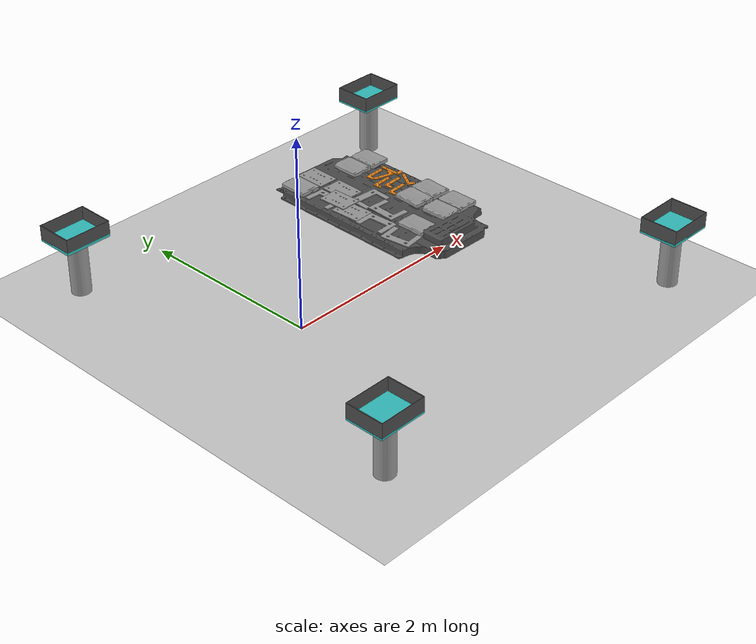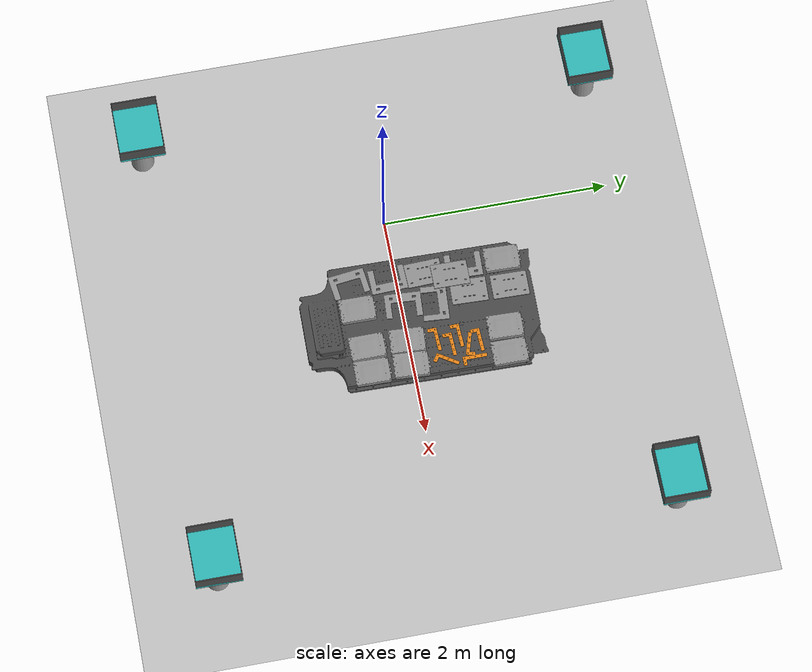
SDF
<sdf version="1.6">
 <world name="default">
  <scene><shadows>0</shadows><ambient>0.4 0.4 0.4 1</ambient><background>0.7 0.7 0.7 1</background></scene>
  <model name="ground_plane">
   <static>1</static>
   <link name="link">
    <collision name="collision">
     <geometry><plane><normal>0 0 1</normal><size>100 100</size></plane></geometry>
     <surface><friction><ode><mu>100</mu><mu2>50</mu2></ode></friction></surface>
    </collision>
    <visual name="visual">
     <cast_shadows>0</cast_shadows>
     <geometry><plane><normal>0 0 1</normal><size>100 100</size></plane></geometry>
     <material>
      <script><uri>file://media/materials/scripts/gazebo.material</uri><name>PR2/Grey3</name></script>
     </material>
    </visual>
   </link>
  </model>
  <light name="sun" type="directional">
   <pose>0 0 10 0 -0 0</pose>
   <diffuse>0.8 0.8 0.8 1</diffuse>
   <specular>0.2 0.2 0.2 1</specular>
   <attenuation>
    <range>1000</range>
    <constant>0.9</constant>
    <linear>0.01</linear>
    <quadratic>0.001</quadratic>
   </attenuation>
   <direction>-0.5 0.1 -0.9</direction>
  </light>
  <model name="tesla_battery">
   <static>1</static>
   <link name="link0">
    <collision name="collision">
     <pose>0.05 0.15 -0.05445 0 -0 0</pose>
     <geometry><box><size>1.1 1.9 0.12</size></box></geometry>
     <surface><friction><ode><mu>1</mu><mu2>1</mu2></ode></friction></surface>
    </collision>
    <visual name="visual">
     <geometry><mesh><uri>model://tesla_battery_v2/meshes/tesla_batteryv2.dae</uri></mesh></geometry>
     <material>
      <script><uri>file://media/materials/scripts/gazebo.material</uri><name>Gazebo/DarkGrey</name></script>
     </material>
    </visual>
   </link>
   <pose>1.25475 -0.007841 0.8 0 -0 0</pose>
  </model>
  <model name="tesla_battery_support">
   <static>1</static>
   <link name="link0">
    <collision name="collision"><geometry><box><size>0.7 2.8 0.5</size></box></geometry></collision>
   </link>
   <pose>1.3 0 0.25 0 -0 0</pose>
  </model>
  <model name="bin_1">
   <static>1</static>
   <link name="column_link">
    <collision name="column">
     <pose>0 0 0.3 0 -0 0</pose>
     <geometry><box><size>0.4 0.5 0.6</size></box></geometry>
     <surface><friction><ode><mu>0.6</mu><mu2>0.6</mu2></ode></friction></surface>
    </collision>
    <visual name="column">
     <pose>0 0 0.3 0 -0 0</pose>
     <geometry><cylinder><radius>0.1</radius><length>0.6</length></cylinder></geometry>
     <material>
      <script><uri>file://media/materials/scripts/gazebo.material</uri><name>PR2/Grey4</name></script>
     </material>
    </visual>
   </link>
   <joint name="column2table" type="revolute">
    <parent>column_link</parent>
    <child>table_link</child>
    <pose>0 0 0.3 0 -0 0</pose>
   </joint>
   <link name="table_link">
    <collision name="surface">
     <pose>0 0 0.6 0 -0 0</pose>
     <geometry><box><size>0.5 0.4 0.03</size></box></geometry>
     <surface><friction><ode><mu>0.6</mu><mu2>0.6</mu2></ode></friction></surface>
    </collision>
    <visual name="surface">
     <pose>0 0 0.6 0 -0 0</pose>
     <geometry><box><size>0.5 0.4 0.03</size></box></geometry>
     <material>
      <script><uri>file://media/materials/scripts/gazebo.material</uri><name>Gazebo/Turquoise</name></script>
     </material>
    </visual>
   </link>
   <joint name="table2bin" type="prismatic">
    <parent>table_link</parent>
    <child>bin_link</child>
    <pose>0 0 1 0 -0 0</pose>
    <axis>
     <xyz>0 0 1</xyz>
     <use_parent_model_frame>0</use_parent_model_frame>
     <limit><lower>-1e+16</lower><upper>1e+16</upper></limit>
     <dynamics><spring_reference>0</spring_reference><spring_stiffness>0</spring_stiffness></dynamics>
    </axis>
   </joint>
   <link name="bin_link">
    <collision name="bin">
     <pose>0 0 0.68 0 -0 0</pose>
     <geometry><mesh><uri>model://table_bin/meshes/big_bin.stl</uri></mesh></geometry>
    </collision>
    <visual name="bin">
     <pose>0 0 0.68 0 -0 0</pose>
     <geometry><mesh><uri>model://table_bin/meshes/big_bin.dae</uri></mesh></geometry>
     <material>
      <script><uri>file://media/materials/scripts/gazebo.material</uri><name>Gazebo/DarkGrey</name></script>
     </material>
    </visual>
   </link>
   <pose>-1 2 0 0 -0 0</pose>
  </model>
  <model name="bin_2">
   <static>1</static>
   <link name="column_link">
    <collision name="column">
     <pose>0 0 0.3 0 -0 0</pose>
     <geometry><box><size>0.4 0.5 0.6</size></box></geometry>
     <surface><friction><ode><mu>0.6</mu><mu2>0.6</mu2></ode></friction></surface>
    </collision>
    <visual name="column">
     <pose>0 0 0.3 0 -0 0</pose>
     <geometry><cylinder><radius>0.1</radius><length>0.6</length></cylinder></geometry>
     <material>
      <script><uri>file://media/materials/scripts/gazebo.material</uri><name>PR2/Grey4</name></script>
     </material>
    </visual>
   </link>
   <joint name="column2table" type="revolute">
    <parent>column_link</parent>
    <child>table_link</child>
    <pose>0 0 0.3 0 -0 0</pose>
   </joint>
   <link name="table_link">
    <collision name="surface">
     <pose>0 0 0.6 0 -0 0</pose>
     <geometry><box><size>0.5 0.4 0.03</size></box></geometry>
     <surface><friction><ode><mu>0.6</mu><mu2>0.6</mu2></ode></friction></surface>
    </collision>
    <visual name="surface">
     <pose>0 0 0.6 0 -0 0</pose>
     <geometry><box><size>0.5 0.4 0.03</size></box></geometry>
     <material>
      <script><uri>file://media/materials/scripts/gazebo.material</uri><name>Gazebo/Turquoise</name></script>
     </material>
    </visual>
   </link>
   <joint name="table2bin" type="prismatic">
    <parent>table_link</parent>
    <child>bin_link</child>
    <pose>0 0 1 0 -0 0</pose>
    <axis>
     <xyz>0 0 1</xyz>
     <use_parent_model_frame>0</use_parent_model_frame>
     <limit><lower>-1e+16</lower><upper>1e+16</upper></limit>
     <dynamics><spring_reference>0</spring_reference><spring_stiffness>0</spring_stiffness></dynamics>
    </axis>
   </joint>
   <link name="bin_link">
    <collision name="bin">
     <pose>0 0 0.68 0 -0 0</pose>
     <geometry><mesh><uri>model://table_bin/meshes/big_bin.stl</uri></mesh></geometry>
    </collision>
    <visual name="bin">
     <pose>0 0 0.68 0 -0 0</pose>
     <geometry><mesh><uri>model://table_bin/meshes/big_bin.dae</uri></mesh></geometry>
     <material>
      <script><uri>file://media/materials/scripts/gazebo.material</uri><name>Gazebo/DarkGrey</name></script>
     </material>
    </visual>
   </link>
   <pose>-1 -2 0 0 -0 0</pose>
  </model>
  <model name="bin_3">
   <static>1</static>
   <link name="column_link">
    <collision name="column">
     <pose>0 0 0.3 0 -0 0</pose>
     <geometry><box><size>0.4 0.5 0.6</size></box></geometry>
     <surface><friction><ode><mu>0.6</mu><mu2>0.6</mu2></ode></friction></surface>
    </collision>
    <visual name="column">
     <pose>0 0 0.3 0 -0 0</pose>
     <geometry><cylinder><radius>0.1</radius><length>0.6</length></cylinder></geometry>
     <material>
      <script><uri>file://media/materials/scripts/gazebo.material</uri><name>PR2/Grey4</name></script>
     </material>
    </visual>
   </link>
   <joint name="column2table" type="revolute">
    <parent>column_link</parent>
    <child>table_link</child>
    <pose>0 0 0.3 0 -0 0</pose>
   </joint>
   <link name="table_link">
    <collision name="surface">
     <pose>0 0 0.6 0 -0 0</pose>
     <geometry><box><size>0.5 0.4 0.03</size></box></geometry>
     <surface><friction><ode><mu>0.6</mu><mu2>0.6</mu2></ode></friction></surface>
    </collision>
    <visual name="surface">
     <pose>0 0 0.6 0 -0 0</pose>
     <geometry><box><size>0.5 0.4 0.03</size></box></geometry>
     <material>
      <script><uri>file://media/materials/scripts/gazebo.material</uri><name>Gazebo/Turquoise</name></script>
     </material>
    </visual>
   </link>
   <joint name="table2bin" type="prismatic">
    <parent>table_link</parent>
    <child>bin_link</child>
    <pose>0 0 1 0 -0 0</pose>
    <axis>
     <xyz>0 0 1</xyz>
     <use_parent_model_frame>0</use_parent_model_frame>
     <limit><lower>-1e+16</lower><upper>1e+16</upper></limit>
     <dynamics><spring_reference>0</spring_reference><spring_stiffness>0</spring_stiffness></dynamics>
    </axis>
   </joint>
   <link name="bin_link">
    <collision name="bin">
     <pose>0 0 0.68 0 -0 0</pose>
     <geometry><mesh><uri>model://table_bin/meshes/big_bin.stl</uri></mesh></geometry>
    </collision>
    <visual name="bin">
     <pose>0 0 0.68 0 -0 0</pose>
     <geometry><mesh><uri>model://table_bin/meshes/big_bin.dae</uri></mesh></geometry>
     <material>
      <script><uri>file://media/materials/scripts/gazebo.material</uri><name>Gazebo/DarkGrey</name></script>
     </material>
    </visual>
   </link>
   <pose>3 -2 0 0 -0 0</pose>
  </model>
  <model name="bin_4">
   <static>1</static>
   <link name="column_link">
    <collision name="column">
     <pose>0 0 0.3 0 -0 0</pose>
     <geometry><box><size>0.4 0.5 0.6</size></box></geometry>
     <surface><friction><ode><mu>0.6</mu><mu2>0.6</mu2></ode></friction></surface>
    </collision>
    <visual name="column">
     <pose>0 0 0.3 0 -0 0</pose>
     <geometry><cylinder><radius>0.1</radius><length>0.6</length></cylinder></geometry>
     <material>
      <script><uri>file://media/materials/scripts/gazebo.material</uri><name>PR2/Grey4</name></script>
     </material>
    </visual>
   </link>
   <joint name="column2table" type="revolute">
    <parent>column_link</parent>
    <child>table_link</child>
    <pose>0 0 0.3 0 -0 0</pose>
   </joint>
   <link name="table_link">
    <collision name="surface">
     <pose>0 0 0.6 0 -0 0</pose>
     <geometry><box><size>0.5 0.4 0.03</size></box></geometry>
     <surface><friction><ode><mu>0.6</mu><mu2>0.6</mu2></ode></friction></surface>
    </collision>
    <visual name="surface">
     <pose>0 0 0.6 0 -0 0</pose>
     <geometry><box><size>0.5 0.4 0.03</size></box></geometry>
     <material>
      <script><uri>file://media/materials/scripts/gazebo.material</uri><name>Gazebo/Turquoise</name></script>
     </material>
    </visual>
   </link>
   <joint name="table2bin" type="prismatic">
    <parent>table_link</parent>
    <child>bin_link</child>
    <pose>0 0 1 0 -0 0</pose>
    <axis>
     <xyz>0 0 1</xyz>
     <use_parent_model_frame>0</use_parent_model_frame>
     <limit><lower>-1e+16</lower><upper>1e+16</upper></limit>
     <dynamics><spring_reference>0</spring_reference><spring_stiffness>0</spring_stiffness></dynamics>
    </axis>
   </joint>
   <link name="bin_link">
    <collision name="bin">
     <pose>0 0 0.68 0 -0 0</pose>
     <geometry><mesh><uri>model://table_bin/meshes/big_bin.stl</uri></mesh></geometry>
    </collision>
    <visual name="bin">
     <pose>0 0 0.68 0 -0 0</pose>
     <geometry><mesh><uri>model://table_bin/meshes/big_bin.dae</uri></mesh></geometry>
     <material>
      <script><uri>file://media/materials/scripts/gazebo.material</uri><name>Gazebo/DarkGrey</name></script>
     </material>
    </visual>
   </link>
   <pose>3 2 0 0 -0 0</pose>
  </model>
  <model name="leaf6">
   <static>0</static>
   <link name="leaf_cell_link">
    <collision name="collision">
     <geometry><box><size>0.2228 0.3149 0.035</size></box></geometry>
     <surface><friction><ode><mu>1</mu><mu2>1</mu2></ode></friction></surface>
    </collision>
    <visual name="visual">
     <geometry><mesh><uri>model://leaf_cell/meshes/leaf_cell.dae</uri></mesh></geometry>
     <material>
      <script><uri>file://media/materials/scripts/gazebo.material</uri><name>Gazebo/Grey</name></script>
     </material>
    </visual>
    <inertial>
     <pose>0 0 0 0 0 -1.5707</pose>
     <mass>0.1</mass>
     <inertia>
      <ixx>0.000539835</ixx>
      <iyy>0.00075853</iyy>
      <izz>0.0012813</izz>
      <ixy>0</ixy>
      <ixz>0</ixz>
      <iyz>0</iyz>
     </inertia>
    </inertial>
   </link>
   <pose>1.7288 0.777598 0.823034 0.000103 -0 -0.002789</pose>
  </model>
  <model name="leaf66">
   <static>0</static>
   <link name="leaf_cell_link">
    <collision name="collision">
     <geometry><box><size>0.2228 0.3149 0.035</size></box></geometry>
     <surface><friction><ode><mu>1</mu><mu2>1</mu2></ode></friction></surface>
    </collision>
    <visual name="visual">
     <geometry><mesh><uri>model://leaf_cell/meshes/leaf_cell.dae</uri></mesh></geometry>
     <material>
      <script><uri>file://media/materials/scripts/gazebo.material</uri><name>Gazebo/Grey</name></script>
     </material>
    </visual>
    <inertial>
     <pose>0 0 0 0 0 -1.5707</pose>
     <mass>0.1</mass>
     <inertia>
      <ixx>0.000539835</ixx>
      <iyy>0.00075853</iyy>
      <izz>0.0012813</izz>
      <ixy>0</ixy>
      <ixz>0</ixz>
      <iyz>0</iyz>
     </inertia>
    </inertial>
   </link>
   <pose>1.49055 0.784628 0.823044 0 5.4e-05 -0.028102</pose>
  </model>
  <model name="leaf5">
   <static>0</static>
   <link name="leaf_cell_link">
    <collision name="collision">
     <geometry><box><size>0.2228 0.3149 0.035</size></box></geometry>
     <surface><friction><ode><mu>1</mu><mu2>1</mu2></ode></friction></surface>
    </collision>
    <visual name="visual">
     <geometry><mesh><uri>model://leaf_cell/meshes/leaf_cell.dae</uri></mesh></geometry>
     <material>
      <script><uri>file://media/materials/scripts/gazebo.material</uri><name>Gazebo/Grey</name></script>
     </material>
    </visual>
    <inertial>
     <pose>0 0 0 0 0 -1.5707</pose>
     <mass>0.1</mass>
     <inertia>
      <ixx>0.000539835</ixx>
      <iyy>0.00075853</iyy>
      <izz>0.0012813</izz>
      <ixy>0</ixy>
      <ixz>0</ixz>
      <iyz>0</iyz>
     </inertia>
    </inertial>
   </link>
   <pose>1.69197 -0.067635 0.82305 0 0 -0.062538</pose>
  </model>
  <model name="leaf55">
   <static>0</static>
   <link name="leaf_cell_link">
    <collision name="collision">
     <geometry><box><size>0.2228 0.3149 0.035</size></box></geometry>
     <surface><friction><ode><mu>1</mu><mu2>1</mu2></ode></friction></surface>
    </collision>
    <visual name="visual">
     <geometry><mesh><uri>model://leaf_cell/meshes/leaf_cell.dae</uri></mesh></geometry>
     <material>
      <script><uri>file://media/materials/scripts/gazebo.material</uri><name>Gazebo/Grey</name></script>
     </material>
    </visual>
    <inertial>
     <pose>0 0 0 0 0 -1.5707</pose>
     <mass>0.1</mass>
     <inertia>
      <ixx>0.000539835</ixx>
      <iyy>0.00075853</iyy>
      <izz>0.0012813</izz>
      <ixy>0</ixy>
      <ixz>0</ixz>
      <iyz>0</iyz>
     </inertia>
    </inertial>
   </link>
   <pose>1.46888 -0.060821 0.823044 0 -5.4e-05 -0.06337</pose>
  </model>
  <model name="leaf4">
   <static>0</static>
   <link name="leaf_cell_link">
    <collision name="collision">
     <geometry><box><size>0.2228 0.3149 0.035</size></box></geometry>
     <surface><friction><ode><mu>1</mu><mu2>1</mu2></ode></friction></surface>
    </collision>
    <visual name="visual">
     <geometry><mesh><uri>model://leaf_cell/meshes/leaf_cell.dae</uri></mesh></geometry>
     <material>
      <script><uri>file://media/materials/scripts/gazebo.material</uri><name>Gazebo/Grey</name></script>
     </material>
    </visual>
    <inertial>
     <pose>0 0 0 0 0 -1.5707</pose>
     <mass>0.1</mass>
     <inertia>
      <ixx>0.000539835</ixx>
      <iyy>0.00075853</iyy>
      <izz>0.0012813</izz>
      <ixy>0</ixy>
      <ixz>0</ixz>
      <iyz>0</iyz>
     </inertia>
    </inertial>
   </link>
   <pose>1.69528 -0.405356 0.823038 -7.8e-05 -0 -0.015381</pose>
  </model>
  <model name="leaf44">
   <static>0</static>
   <link name="leaf_cell_link">
    <collision name="collision">
     <geometry><box><size>0.2228 0.3149 0.035</size></box></geometry>
     <surface><friction><ode><mu>1</mu><mu2>1</mu2></ode></friction></surface>
    </collision>
    <visual name="visual">
     <geometry><mesh><uri>model://leaf_cell/meshes/leaf_cell.dae</uri></mesh></geometry>
     <material>
      <script><uri>file://media/materials/scripts/gazebo.material</uri><name>Gazebo/Grey</name></script>
     </material>
    </visual>
    <inertial>
     <pose>0 0 0 0 0 -1.5707</pose>
     <mass>0.1</mass>
     <inertia>
      <ixx>0.000539835</ixx>
      <iyy>0.00075853</iyy>
      <izz>0.0012813</izz>
      <ixy>0</ixy>
      <ixz>0</ixz>
      <iyz>0</iyz>
     </inertia>
    </inertial>
   </link>
   <pose>1.46388 -0.405727 0.823044 -0 5.4e-05 0.008462</pose>
  </model>
  <model name="leaf1">
   <static>0</static>
   <link name="leaf_cell_link">
    <collision name="collision">
     <geometry><box><size>0.2228 0.3149 0.035</size></box></geometry>
     <surface><friction><ode><mu>1</mu><mu2>1</mu2></ode></friction></surface>
    </collision>
    <visual name="visual">
     <geometry><mesh><uri>model://leaf_cell/meshes/leaf_cell.dae</uri></mesh></geometry>
     <material>
      <script><uri>file://media/materials/scripts/gazebo.material</uri><name>Gazebo/Grey</name></script>
     </material>
    </visual>
    <inertial>
     <pose>0 0 0 0 0 -1.5707</pose>
     <mass>0.1</mass>
     <inertia>
      <ixx>0.000539835</ixx>
      <iyy>0.00075853</iyy>
      <izz>0.0012813</izz>
      <ixy>0</ixy>
      <ixz>0</ixz>
      <iyz>0</iyz>
     </inertia>
    </inertial>
   </link>
   <pose>0.867996 0.87712 0.823044 0 5.4e-05 -0.025217</pose>
  </model>
  <model name="plate_a_1">
   <static>0</static>
   <link name="link0">
    <collision name="collision">
     <geometry><mesh><uri>model://plate_a/meshes/plate_a_centroid.stl</uri></mesh></geometry>
     <surface><friction><ode><mu>0.99</mu><mu2>0.99</mu2></ode></friction></surface>
    </collision>
    <visual name="visual">
     <geometry><mesh><uri>model://plate_a/meshes/plate_a_centroid.dae</uri></mesh></geometry>
     <material>
      <script><uri>file://media/materials/scripts/gazebo.material</uri><name>PR2/Grey1</name></script>
     </material>
    </visual>
    <inertial>
     <mass>0.1</mass>
     <inertia>
      <ixx>0.00082718</ixx>
      <ixy>0</ixy>
      <ixz>0</ixz>
      <iyy>0.00043403</iyy>
      <iyz>0</iyz>
      <izz>0.00125955</izz>
     </inertia>
    </inertial>
   </link>
   <pose>0.917243 0.535907 0.810531 0.000212 -2.2e-05 -0.033624</pose>
  </model>
  <model name="leaf2">
   <static>0</static>
   <link name="leaf_cell_link">
    <collision name="collision">
     <geometry><box><size>0.2228 0.3149 0.035</size></box></geometry>
     <surface><friction><ode><mu>1</mu><mu2>1</mu2></ode></friction></surface>
    </collision>
    <visual name="visual">
     <geometry><mesh><uri>model://leaf_cell/meshes/leaf_cell.dae</uri></mesh></geometry>
     <material>
      <script><uri>file://media/materials/scripts/gazebo.material</uri><name>Gazebo/Grey</name></script>
     </material>
    </visual>
    <inertial>
     <pose>0 0 0 0 0 -1.5707</pose>
     <mass>0.1</mass>
     <inertia>
      <ixx>0.000539835</ixx>
      <iyy>0.00075853</iyy>
      <izz>0.0012813</izz>
      <ixy>0</ixy>
      <ixz>0</ixz>
      <iyz>0</iyz>
     </inertia>
    </inertial>
   </link>
   <pose>1.10901 -0.427213 0.82305 -0 -0 -0.007016</pose>
  </model>
  <model name="plate_a_2">
   <static>0</static>
   <link name="link0">
    <collision name="collision">
     <geometry><mesh><uri>model://plate_a/meshes/plate_a_centroid.stl</uri></mesh></geometry>
     <surface><friction><ode><mu>0.99</mu><mu2>0.99</mu2></ode></friction></surface>
    </collision>
    <visual name="visual">
     <geometry><mesh><uri>model://plate_a/meshes/plate_a_centroid.dae</uri></mesh></geometry>
     <material>
      <script><uri>file://media/materials/scripts/gazebo.material</uri><name>PR2/Grey1</name></script>
     </material>
    </visual>
    <inertial>
     <mass>0.1</mass>
     <inertia>
      <ixx>0.00082718</ixx>
      <ixy>0</ixy>
      <ixz>0</ixz>
      <iyy>0.00043403</iyy>
      <iyz>0</iyz>
      <izz>0.00125955</izz>
     </inertia>
    </inertial>
   </link>
   <pose>0.93036 -0.124037 0.810542 -5.5e-05 1.7e-05 0.039205</pose>
  </model>
  <gravity>0 0 -9.8</gravity>
  <magnetic_field>6e-06 2.3e-05 -4.2e-05</magnetic_field>
  <atmosphere type="adiabatic"/>
  <physics name="default_physics" default="0" type="ode">
   <max_step_size>0.001</max_step_size>
   <real_time_factor>1</real_time_factor>
   <real_time_update_rate>1000</real_time_update_rate>
  </physics>
  <spherical_coordinates>
   <surface_model>EARTH_WGS84</surface_model>
   <latitude_deg>0</latitude_deg>
   <longitude_deg>0</longitude_deg>
   <elevation>0</elevation>
   <heading_deg>0</heading_deg>
  </spherical_coordinates>
  <model name="plate_a_1_clone">
   <static>0</static>
   <link name="link0">
    <collision name="collision">
     <geometry><mesh><uri>model://plate_a/meshes/plate_a_centroid.stl</uri></mesh></geometry>
     <surface><friction><ode><mu>0.99</mu><mu2>0.99</mu2></ode></friction></surface>
    </collision>
    <visual name="visual">
     <geometry><mesh><uri>model://plate_a/meshes/plate_a_centroid.dae</uri></mesh></geometry>
     <material>
      <script><uri>file://media/materials/scripts/gazebo.material</uri><name>PR2/Grey1</name></script>
     </material>
    </visual>
    <inertial>
     <mass>0.1</mass>
     <inertia>
      <ixx>0.00082718</ixx>
      <ixy>0</ixy>
      <ixz>0</ixz>
      <iyy>0.00043403</iyy>
      <iyz>0</iyz>
      <izz>0.00125955</izz>
     </inertia>
    </inertial>
   </link>
   <pose>1.08161 -0.034199 0.81055 0 -0 3.0814</pose>
  </model>
  <model name="plate_a_1_clone_clone">
   <static>0</static>
   <link name="link0">
    <collision name="collision">
     <geometry><mesh><uri>model://plate_a/meshes/plate_a_centroid.stl</uri></mesh></geometry>
     <surface><friction><ode><mu>0.99</mu><mu2>0.99</mu2></ode></friction></surface>
    </collision>
    <visual name="visual">
     <geometry><mesh><uri>model://plate_a/meshes/plate_a_centroid.dae</uri></mesh></geometry>
     <material>
      <script><uri>file://media/materials/scripts/gazebo.material</uri><name>PR2/Grey1</name></script>
     </material>
    </visual>
    <inertial>
     <mass>0.1</mass>
     <inertia>
      <ixx>0.00082718</ixx>
      <ixy>0</ixy>
      <ixz>0</ixz>
      <iyy>0.00043403</iyy>
      <iyz>0</iyz>
      <izz>0.00125955</izz>
     </inertia>
    </inertial>
   </link>
   <pose>0.804818 -0.466469 0.810545 -5e-05 -1.4e-05 -3.01698</pose>
  </model>
  <model name="plate_a_2_clone">
   <static>0</static>
   <link name="link0">
    <collision name="collision">
     <geometry><mesh><uri>model://plate_a/meshes/plate_a_centroid.stl</uri></mesh></geometry>
     <surface><friction><ode><mu>0.99</mu><mu2>0.99</mu2></ode></friction></surface>
    </collision>
    <visual name="visual">
     <geometry><mesh><uri>model://plate_a/meshes/plate_a_centroid.dae</uri></mesh></geometry>
     <material>
      <script><uri>file://media/materials/scripts/gazebo.material</uri><name>PR2/Grey1</name></script>
     </material>
    </visual>
    <inertial>
     <mass>0.1</mass>
     <inertia>
      <ixx>0.00082718</ixx>
      <ixy>0</ixy>
      <ixz>0</ixz>
      <iyy>0.00043403</iyy>
      <iyz>0</iyz>
      <izz>0.00125955</izz>
     </inertia>
    </inertial>
   </link>
   <pose>1.16972 0.283107 0.81055 0 -0 1.50647</pose>
  </model>
  <audio><device>default</device></audio>
  <model name="plate_b_clone">
   <static>0</static>
   <link name="link0">
    <collision name="collision">
     <geometry><mesh><uri>model://plate_b/meshes/plate_b.stl</uri></mesh></geometry>
     <surface><friction><ode><mu>0.99</mu><mu2>0.99</mu2></ode></friction></surface>
    </collision>
    <visual name="visual">
     <geometry><mesh><uri>model://plate_b/meshes/plate_b.dae</uri></mesh></geometry>
     <material>
      <script><uri>file://media/materials/scripts/gazebo.material</uri><name>Gazebo/Grey</name></script>
     </material>
    </visual>
    <inertial>
     <mass>0.1</mass>
     <inertia>
      <ixx>0.000539835</ixx>
      <iyy>0.00075853</iyy>
      <izz>0.0012813</izz>
      <ixy>0</ixy>
      <ixz>0</ixz>
      <iyz>0</iyz>
     </inertia>
    </inertial>
   </link>
   <pose>1.10629 0.538699 0.810472 1e-06 1e-06 -0.030392</pose>
  </model>
  <model name="plate_b_clone_clone">
   <static>0</static>
   <link name="link0">
    <collision name="collision">
     <geometry><mesh><uri>model://plate_b/meshes/plate_b.stl</uri></mesh></geometry>
     <surface><friction><ode><mu>0.99</mu><mu2>0.99</mu2></ode></friction></surface>
    </collision>
    <visual name="visual">
     <geometry><mesh><uri>model://plate_b/meshes/plate_b.dae</uri></mesh></geometry>
     <material>
      <script><uri>file://media/materials/scripts/gazebo.material</uri><name>Gazebo/Grey</name></script>
     </material>
    </visual>
    <inertial>
     <mass>0.1</mass>
     <inertia>
      <ixx>0.000539835</ixx>
      <iyy>0.00075853</iyy>
      <izz>0.0012813</izz>
      <ixy>0</ixy>
      <ixz>0</ixz>
      <iyz>0</iyz>
     </inertia>
    </inertial>
   </link>
   <pose>1.11807 0.893415 0.81055 1e-06 1e-06 -0.019593</pose>
  </model>
  <model name="plate_b_0">
   <static>0</static>
   <link name="link0">
    <collision name="collision">
     <geometry><box><size>0.22 0.315 0.015</size></box></geometry>
     <surface><friction><ode><mu>0.99</mu><mu2>0.99</mu2></ode></friction></surface>
    </collision>
    <visual name="visual">
     <geometry><mesh><uri>model://plate_b/meshes/plate_b.dae</uri></mesh></geometry>
     <material>
      <script><uri>file://media/materials/scripts/gazebo.material</uri><name>Gazebo/Grey</name></script>
     </material>
    </visual>
    <inertial>
     <mass>0.5</mass>
     <inertia>
      <ixx>0.0041438</ixx>
      <ixy>0</ixy>
      <ixz>0</ixz>
      <iyy>0.002026</iyy>
      <iyz>0</iyz>
      <izz>0.006151</izz>
     </inertia>
    </inertial>
   </link>
   <pose>0.875368 0.188998 0.813036 9e-05 0 0.039205</pose>
  </model>
  <model name="bracket_0">
   <static>0</static>
   <link name="link0">
    <collision name="collision">
     <pose>-0.005 0 0.005 0 -0 0</pose>
     <geometry><cylinder><radius>0.04</radius><length>0.01</length></cylinder></geometry>
     <surface><friction><ode><mu>0.99</mu><mu2>0.99</mu2></ode></friction></surface>
    </collision>
    <visual name="visual">
     <geometry><mesh><uri>model://bracket/meshes/bracket_modified.dae</uri></mesh></geometry>
     <material>
      <script><uri>file://media/materials/scripts/gazebo.material</uri><name>Gazebo/Orange</name></script>
     </material>
    </visual>
    <inertial>
     <pose>-0.005 0 0.005 0 -0 0</pose>
     <mass>0.1</mass>
     <inertia>
      <ixx>3.15e-05</ixx>
      <ixy>0</ixy>
      <ixz>0</ixz>
      <iyy>3.15e-05</iyy>
      <iyz>0</iyz>
      <izz>6.13e-05</izz>
     </inertia>
    </inertial>
   </link>
   <pose>1.71347 0.478338 0.805567 0.00018 -0.00034 1.57882</pose>
  </model>
  <model name="bracket_0_clone">
   <static>0</static>
   <link name="link0">
    <collision name="collision">
     <pose>-0.005 0 0.005 0 -0 0</pose>
     <geometry><cylinder><radius>0.04</radius><length>0.01</length></cylinder></geometry>
     <surface><friction><ode><mu>0.99</mu><mu2>0.99</mu2></ode></friction></surface>
    </collision>
    <visual name="visual">
     <geometry><mesh><uri>model://bracket/meshes/bracket_modified.dae</uri></mesh></geometry>
     <material>
      <script><uri>file://media/materials/scripts/gazebo.material</uri><name>Gazebo/Orange</name></script>
     </material>
    </visual>
    <inertial>
     <pose>-0.005 0 0.005 0 -0 0</pose>
     <mass>0.1</mass>
     <inertia>
      <ixx>3.15e-05</ixx>
      <ixy>0</ixy>
      <ixz>0</ixz>
      <iyy>3.15e-05</iyy>
      <iyz>0</iyz>
      <izz>6.13e-05</izz>
     </inertia>
    </inertial>
   </link>
   <pose>1.69344 0.246253 0.805556 -0.000384 3.3e-05 1.00293</pose>
  </model>
  <model name="bracket_0_clone_0">
   <static>0</static>
   <link name="link0">
    <collision name="collision">
     <pose>-0.005 0 0.005 0 -0 0</pose>
     <geometry><cylinder><radius>0.04</radius><length>0.01</length></cylinder></geometry>
     <surface><friction><ode><mu>0.99</mu><mu2>0.99</mu2></ode></friction></surface>
    </collision>
    <visual name="visual">
     <geometry><mesh><uri>model://bracket/meshes/bracket_modified.dae</uri></mesh></geometry>
     <material>
      <script><uri>file://media/materials/scripts/gazebo.material</uri><name>Gazebo/Orange</name></script>
     </material>
    </visual>
    <inertial>
     <pose>-0.005 0 0.005 0 -0 0</pose>
     <mass>0.1</mass>
     <inertia>
      <ixx>3.15e-05</ixx>
      <ixy>0</ixy>
      <ixz>0</ixz>
      <iyy>3.15e-05</iyy>
      <iyz>0</iyz>
      <izz>6.13e-05</izz>
     </inertia>
    </inertial>
   </link>
   <pose>1.5684 0.306625 0.805546 -0.000102 -0.000101 0.043502</pose>
  </model>
  <model name="bracket_0_clone_1">
   <static>0</static>
   <link name="link0">
    <collision name="collision">
     <pose>-0.005 0 0.005 0 -0 0</pose>
     <geometry><cylinder><radius>0.04</radius><length>0.01</length></cylinder></geometry>
     <surface><friction><ode><mu>0.99</mu><mu2>0.99</mu2></ode></friction></surface>
    </collision>
    <visual name="visual">
     <geometry><mesh><uri>model://bracket/meshes/bracket_modified.dae</uri></mesh></geometry>
     <material>
      <script><uri>file://media/materials/scripts/gazebo.material</uri><name>Gazebo/Orange</name></script>
     </material>
    </visual>
    <inertial>
     <pose>-0.005 0 0.005 0 -0 0</pose>
     <mass>0.1</mass>
     <inertia>
      <ixx>3.15e-05</ixx>
      <ixy>0</ixy>
      <ixz>0</ixz>
      <iyy>3.15e-05</iyy>
      <iyz>0</iyz>
      <izz>6.13e-05</izz>
     </inertia>
    </inertial>
   </link>
   <pose>1.57142 0.547861 0.805557 -0.000126 -0.000117 0.04356</pose>
  </model>
  <model name="bracket_0_clone_2">
   <static>0</static>
   <link name="link0">
    <collision name="collision">
     <pose>-0.005 0 0.005 0 -0 0</pose>
     <geometry><cylinder><radius>0.04</radius><length>0.01</length></cylinder></geometry>
     <surface><friction><ode><mu>0.99</mu><mu2>0.99</mu2></ode></friction></surface>
    </collision>
    <visual name="visual">
     <geometry><mesh><uri>model://bracket/meshes/bracket_modified.dae</uri></mesh></geometry>
     <material>
      <script><uri>file://media/materials/scripts/gazebo.material</uri><name>Gazebo/Orange</name></script>
     </material>
    </visual>
    <inertial>
     <pose>-0.005 0 0.005 0 -0 0</pose>
     <mass>0.1</mass>
     <inertia>
      <ixx>3.15e-05</ixx>
      <ixy>0</ixy>
      <ixz>0</ixz>
      <iyy>3.15e-05</iyy>
      <iyz>0</iyz>
      <izz>6.13e-05</izz>
     </inertia>
    </inertial>
   </link>
   <pose>1.49998 0.383995 0.805546 -0.000106 -9.1e-05 0.043533</pose>
  </model>
  <model name="bracket_0_clone_3">
   <static>0</static>
   <link name="link0">
    <collision name="collision">
     <pose>-0.005 0 0.005 0 -0 0</pose>
     <geometry><cylinder><radius>0.04</radius><length>0.01</length></cylinder></geometry>
     <surface><friction><ode><mu>0.99</mu><mu2>0.99</mu2></ode></friction></surface>
    </collision>
    <visual name="visual">
     <geometry><mesh><uri>model://bracket/meshes/bracket_modified.dae</uri></mesh></geometry>
     <material>
      <script><uri>file://media/materials/scripts/gazebo.material</uri><name>Gazebo/Orange</name></script>
     </material>
    </visual>
    <inertial>
     <pose>-0.005 0 0.005 0 -0 0</pose>
     <mass>0.1</mass>
     <inertia>
      <ixx>3.15e-05</ixx>
      <ixy>0</ixy>
      <ixz>0</ixz>
      <iyy>3.15e-05</iyy>
      <iyz>0</iyz>
      <izz>6.13e-05</izz>
     </inertia>
    </inertial>
   </link>
   <pose>1.5002 0.189194 0.805548 -0.000127 -0.000122 0.043532</pose>
  </model>
  <model name="bracket_0_clone_4">
   <static>0</static>
   <link name="link0">
    <collision name="collision">
     <pose>-0.005 0 0.005 0 -0 0</pose>
     <geometry><cylinder><radius>0.04</radius><length>0.01</length></cylinder></geometry>
     <surface><friction><ode><mu>0.99</mu><mu2>0.99</mu2></ode></friction></surface>
    </collision>
    <visual name="visual">
     <geometry><mesh><uri>model://bracket/meshes/bracket_modified.dae</uri></mesh></geometry>
     <material>
      <script><uri>file://media/materials/scripts/gazebo.material</uri><name>Gazebo/Orange</name></script>
     </material>
    </visual>
    <inertial>
     <pose>-0.005 0 0.005 0 -0 0</pose>
     <mass>0.1</mass>
     <inertia>
      <ixx>3.15e-05</ixx>
      <ixy>0</ixy>
      <ixz>0</ixz>
      <iyy>3.15e-05</iyy>
      <iyz>0</iyz>
      <izz>6.13e-05</izz>
     </inertia>
    </inertial>
   </link>
   <pose>1.58053 0.44752 0.805564 7.6e-05 0.000377 2.85479</pose>
  </model>
  <model name="plate_b_0_clone">
   <static>0</static>
   <link name="link0">
    <collision name="collision">
     <geometry><box><size>0.22 0.315 0.015</size></box></geometry>
     <surface><friction><ode><mu>0.99</mu><mu2>0.99</mu2></ode></friction></surface>
    </collision>
    <visual name="visual">
     <geometry><mesh><uri>model://plate_b/meshes/plate_b.dae</uri></mesh></geometry>
     <material>
      <script><uri>file://media/materials/scripts/gazebo.material</uri><name>Gazebo/Grey</name></script>
     </material>
    </visual>
    <inertial>
     <mass>0.5</mass>
     <inertia>
      <ixx>0.0041438</ixx>
      <ixy>0</ixy>
      <ixz>0</ixz>
      <iyy>0.002026</iyy>
      <iyz>0</iyz>
      <izz>0.006151</izz>
     </inertia>
    </inertial>
   </link>
   <pose>0.933328 0.408491 0.826664 -0.022917 -0.001252 -0.002927</pose>
  </model>
 </world>
</sdf>
